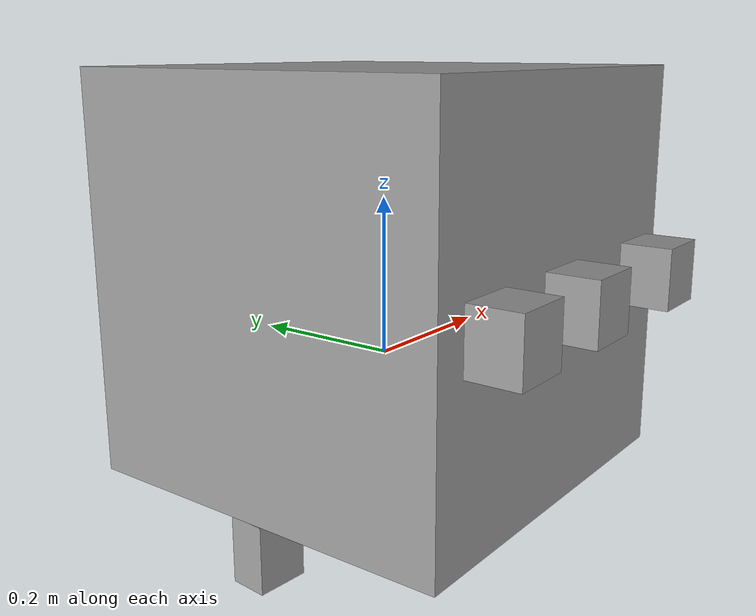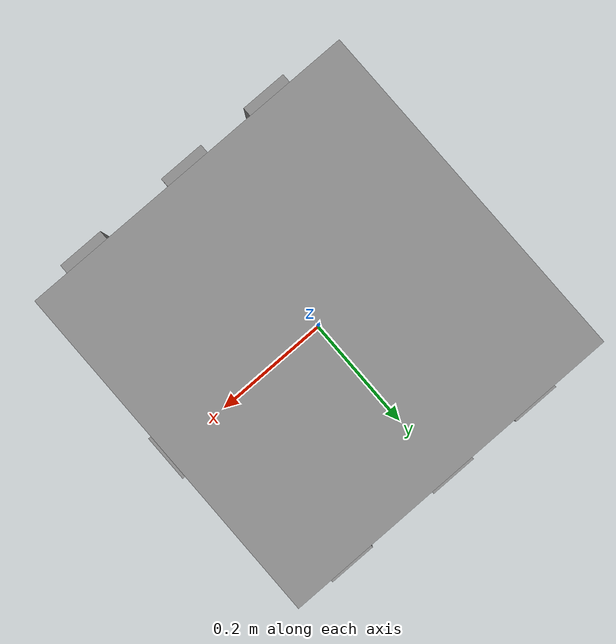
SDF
<sdf version="1.5">
 <world name="default">
  <include><uri>model://sun</uri></include>
  <model name="tiburon_bot_final">
   <include><uri>model://tiburon_bot_final</uri></include>
   <plugin name="tiburon_simulator" filename="libtiburon_simulator.so"/>
   <plugin name="imu" filename="libimu.so"/>
  </model>
 </world>
</sdf>

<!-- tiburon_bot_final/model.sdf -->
<sdf version='1.6'>
  <model name='tiburon_bot_final'>
    <link name='main_cube_body'>
      <pose frame=''>0.004745 0.002289 0.10857 0 -0 0</pose>
      <inertial>
        <mass>23</mass>
        <inertia>
          <ixx>0.166667</ixx>
          <ixy>0</ixy>
          <ixz>0</ixz>
          <iyy>0.166667</iyy>
          <iyz>0</iyz>
          <izz>0.166667</izz>
        </inertia>
        <pose frame=''>0 0 0 0 -0 0</pose>
      </inertial>
      <self_collide>0</self_collide>
      <kinematic>0</kinematic>
      <visual name='visual'>
        <pose frame=''>0 0 0 0 -0 0</pose>
        <geometry>
          <box>
            <size>0.5 0.5 0.5</size>
          </box>
        </geometry>
        <material>
          <lighting>1</lighting>
          <script>
            <uri>file://media/materials/scripts/gazebo.material</uri>
            <name>Gazebo/Grey</name>
          </script>
          <shader type='pixel'>
            <normal_map>__default__</normal_map>
          </shader>
          <ambient>0.3 0.3 0.3 1</ambient>
          <diffuse>0.7 0.7 0.7 1</diffuse>
          <specular>0.01 0.01 0.01 1</specular>
          <emissive>0 0 0 1</emissive>
        </material>
        <transparency>0</transparency>
        <cast_shadows>1</cast_shadows>
      </visual>
      <collision name='collision'>
        <laser_retro>0</laser_retro>
        <max_contacts>10</max_contacts>
        <pose frame=''>0 0 0 0 -0 0</pose>
        <geometry>
          <box>
            <size>0.5 0.5 0.5</size>
          </box>
        </geometry>
        <surface>
          <friction>
            <ode>
              <mu>1</mu>
              <mu2>1</mu2>
              <fdir1>0 0 0</fdir1>
              <slip1>0</slip1>
              <slip2>0</slip2>
            </ode>
            <torsional>
              <coefficient>1</coefficient>
              <patch_radius>0</patch_radius>
              <surface_radius>0</surface_radius>
              <use_patch_radius>1</use_patch_radius>
              <ode>
                <slip>0</slip>
              </ode>
            </torsional>
          </friction>
          <bounce>
            <restitution_coefficient>0</restitution_coefficient>
            <threshold>1e+06</threshold>
          </bounce>
          <contact>
            <collide_without_contact>0</collide_without_contact>
            <collide_without_contact_bitmask>1</collide_without_contact_bitmask>
            <collide_bitmask>1</collide_bitmask>
            <ode>
              <soft_cfm>0</soft_cfm>
              <soft_erp>0.2</soft_erp>
              <kp>1e+13</kp>
              <kd>1</kd>
              <max_vel>0.01</max_vel>
              <min_depth>0</min_depth>
            </ode>
            <bullet>
              <split_impulse>1</split_impulse>
              <split_impulse_penetration_threshold>-0.01</split_impulse_penetration_threshold>
              <soft_cfm>0</soft_cfm>
              <soft_erp>0.2</soft_erp>
              <kp>1e+13</kp>
              <kd>1</kd>
            </bullet>
          </contact>
        </surface>
      </collision>
    </link>
    <link name='camera_link'>
      <pose frame=''>-0.207029 0.014757 -0.187517 3.14159 4e-06 -1.64981</pose>
      <inertial>
        <mass>0.00026722</mass>
        <inertia>
          <ixx>2.5e-07</ixx>
          <ixy>0</ixy>
          <ixz>0</ixz>
          <iyy>2.1e-07</iyy>
          <iyz>0</iyz>
          <izz>1.5e-07</izz>
        </inertia>
        <pose frame=''>0 0 0 0 -0 0</pose>
      </inertial>
      <self_collide>0</self_collide>
      <kinematic>0</kinematic>
      <sensor name='camera1' type='camera'>
        <camera name='head'>
          <horizontal_fov>1.39626</horizontal_fov>
          <image>
            <width>800</width>
            <height>800</height>
            <format>R8G8B8</format>
          </image>
          <clip>
            <near>0.02</near>
            <far>300</far>
          </clip>
        </camera>
        <always_on>1</always_on>
        <update_rate>30</update_rate>
        <visualize>1</visualize>
        <plugin name='camera_controller' filename='libgazebo_ros_camera.so'>
          <alwaysOn>true</alwaysOn>
          <updateRate>0.0</updateRate>
          <cameraName>model/camera1</cameraName>
          <imageTopicName>image_raw</imageTopicName>
          <cameraInfoTopicName>camera_info</cameraInfoTopicName>
          <frameName>camera_link</frameName>
          <hackBaseline>0.07</hackBaseline>
          <distortionK1>0.0</distortionK1>
          <distortionK2>0.0</distortionK2>
          <distortionK3>0.0</distortionK3>
          <distortionT1>0.0</distortionT1>
          <distortionT2>0.0</distortionT2>
        </plugin>
      </sensor>
      <visual name='visual'>
        <pose frame=''>0 0 0 0 -0 0</pose>
        <geometry>
          <box>
            <size>0.048464 0.065326 0.084299</size>
          </box>
        </geometry>
        <material>
          <lighting>1</lighting>
          <script>
            <uri>file://media/materials/scripts/gazebo.material</uri>
            <name>Gazebo/Grey</name>
          </script>
          <shader type='pixel'>
            <normal_map>__default__</normal_map>
          </shader>
          <ambient>0.3 0.3 0.3 1</ambient>
          <diffuse>0.7 0.7 0.7 1</diffuse>
          <specular>0.01 0.01 0.01 1</specular>
          <emissive>0 0 0 1</emissive>
        </material>
        <transparency>0</transparency>
        <cast_shadows>1</cast_shadows>
      </visual>
      <collision name='collision'>
        <laser_retro>0</laser_retro>
        <max_contacts>10</max_contacts>
        <pose frame=''>0 0 0 0 -0 0</pose>
        <geometry>
          <box>
            <size>0.048464 0.065326 0.084299</size>
          </box>
        </geometry>
        <surface>
          <friction>
            <ode>
              <mu>1</mu>
              <mu2>1</mu2>
              <fdir1>0 0 0</fdir1>
              <slip1>0</slip1>
              <slip2>0</slip2>
            </ode>
            <torsional>
              <coefficient>1</coefficient>
              <patch_radius>0</patch_radius>
              <surface_radius>0</surface_radius>
              <use_patch_radius>1</use_patch_radius>
              <ode>
                <slip>0</slip>
              </ode>
            </torsional>
          </friction>
          <bounce>
            <restitution_coefficient>0</restitution_coefficient>
            <threshold>1e+06</threshold>
          </bounce>
          <contact>
            <collide_without_contact>0</collide_without_contact>
            <collide_without_contact_bitmask>1</collide_without_contact_bitmask>
            <collide_bitmask>1</collide_bitmask>
            <ode>
              <soft_cfm>0</soft_cfm>
              <soft_erp>0.2</soft_erp>
              <kp>1e+13</kp>
              <kd>1</kd>
              <max_vel>0.01</max_vel>
              <min_depth>0</min_depth>
            </ode>
            <bullet>
              <split_impulse>1</split_impulse>
              <split_impulse_penetration_threshold>-0.01</split_impulse_penetration_threshold>
              <soft_cfm>0</soft_cfm>
              <soft_erp>0.2</soft_erp>
              <kp>1e+13</kp>
              <kd>1</kd>
            </bullet>
          </contact>
        </surface>
      </collision>
    </link>
    <link name='thruster_1'>
      <pose frame=''>-0.161996 0.257619 0.10857 0 -0 0</pose>
      <inertial>
        <mass>0.585</mass>
        <inertia>
          <ixx>0.166667</ixx>
          <ixy>0</ixy>
          <ixz>0</ixz>
          <iyy>0.166667</iyy>
          <iyz>0</iyz>
          <izz>0.166667</izz>
        </inertia>
        <pose frame=''>0 0 0 0 -0 0</pose>
      </inertial>
      <self_collide>0</self_collide>
      <kinematic>0</kinematic>
      <gravity>1</gravity>
      <visual name='visual'>
        <pose frame=''>0 0 0 0 -0 0</pose>
        <geometry>
          <box>
            <size>0.077 0.077 0.077</size>
          </box>
        </geometry>
        <material>
          <lighting>1</lighting>
          <script>
            <uri>file://media/materials/scripts/gazebo.material</uri>
            <name>Gazebo/Grey</name>
          </script>
          <shader type='pixel'>
            <normal_map>__default__</normal_map>
          </shader>
          <ambient>1 1 1 1</ambient>
          <diffuse>1 1 1 1</diffuse>
          <specular>1 1 1 1</specular>
          <emissive>0 0 0 1</emissive>
        </material>
        <transparency>0</transparency>
        <cast_shadows>1</cast_shadows>
      </visual>
      <collision name='collision'>
        <laser_retro>0</laser_retro>
        <max_contacts>10</max_contacts>
        <pose frame=''>0 0 0 0 -0 0</pose>
        <geometry>
          <box>
            <size>0.077 0.077 0.077</size>
          </box>
        </geometry>
        <surface>
          <friction>
            <ode>
              <mu>1</mu>
              <mu2>1</mu2>
              <fdir1>0 0 0</fdir1>
              <slip1>0</slip1>
              <slip2>0</slip2>
            </ode>
            <torsional>
              <coefficient>1</coefficient>
              <patch_radius>0</patch_radius>
              <surface_radius>0</surface_radius>
              <use_patch_radius>1</use_patch_radius>
              <ode>
                <slip>0</slip>
              </ode>
            </torsional>
          </friction>
          <bounce>
            <restitution_coefficient>0</restitution_coefficient>
            <threshold>1e+06</threshold>
          </bounce>
          <contact>
            <collide_without_contact>0</collide_without_contact>
            <collide_without_contact_bitmask>1</collide_without_contact_bitmask>
            <collide_bitmask>1</collide_bitmask>
            <ode>
              <soft_cfm>0</soft_cfm>
              <soft_erp>0.2</soft_erp>
              <kp>1e+13</kp>
              <kd>1</kd>
              <max_vel>0.01</max_vel>
              <min_depth>0</min_depth>
            </ode>
            <bullet>
              <split_impulse>1</split_impulse>
              <split_impulse_penetration_threshold>-0.01</split_impulse_penetration_threshold>
              <soft_cfm>0</soft_cfm>
              <soft_erp>0.2</soft_erp>
              <kp>1e+13</kp>
              <kd>1</kd>
            </bullet>
          </contact>
        </surface>
      </collision>
    </link>
    <link name='thruster_2'>
      <pose frame=''>-0.161996 -0.27381 0.10857 0 -0 0</pose>
      <inertial>
        <mass>0.5</mass>
        <inertia>
          <ixx>0.166667</ixx>
          <ixy>0</ixy>
          <ixz>0</ixz>
          <iyy>0.166667</iyy>
          <iyz>0</iyz>
          <izz>0.166667</izz>
        </inertia>
        <pose frame=''>0 0 0 0 -0 0</pose>
      </inertial>
      <self_collide>0</self_collide>
      <kinematic>0</kinematic>
      <gravity>1</gravity>
      <visual name='visual'>
        <pose frame=''>0 0 0 0 -0 0</pose>
        <geometry>
          <box>
            <size>0.077 0.077 0.077</size>
          </box>
        </geometry>
        <material>
          <lighting>1</lighting>
          <script>
            <uri>file://media/materials/scripts/gazebo.material</uri>
            <name>Gazebo/Grey</name>
          </script>
          <shader type='pixel'>
            <normal_map>__default__</normal_map>
          </shader>
          <ambient>1 1 1 1</ambient>
          <diffuse>1 1 1 1</diffuse>
          <specular>1 1 1 1</specular>
          <emissive>0 0 0 1</emissive>
        </material>
        <transparency>0</transparency>
        <cast_shadows>1</cast_shadows>
      </visual>
      <collision name='collision'>
        <laser_retro>0</laser_retro>
        <max_contacts>10</max_contacts>
        <pose frame=''>0 0 0 0 -0 0</pose>
        <geometry>
          <box>
            <size>0.077 0.077 0.077</size>
          </box>
        </geometry>
        <surface>
          <friction>
            <ode>
              <mu>1</mu>
              <mu2>1</mu2>
              <fdir1>0 0 0</fdir1>
              <slip1>0</slip1>
              <slip2>0</slip2>
            </ode>
            <torsional>
              <coefficient>1</coefficient>
              <patch_radius>0</patch_radius>
              <surface_radius>0</surface_radius>
              <use_patch_radius>1</use_patch_radius>
              <ode>
                <slip>0</slip>
              </ode>
            </torsional>
          </friction>
          <bounce>
            <restitution_coefficient>0</restitution_coefficient>
            <threshold>1e+06</threshold>
          </bounce>
          <contact>
            <collide_without_contact>0</collide_without_contact>
            <collide_without_contact_bitmask>1</collide_without_contact_bitmask>
            <collide_bitmask>1</collide_bitmask>
            <ode>
              <soft_cfm>0</soft_cfm>
              <soft_erp>0.2</soft_erp>
              <kp>1e+13</kp>
              <kd>1</kd>
              <max_vel>0.01</max_vel>
              <min_depth>0</min_depth>
            </ode>
            <bullet>
              <split_impulse>1</split_impulse>
              <split_impulse_penetration_threshold>-0.01</split_impulse_penetration_threshold>
              <soft_cfm>0</soft_cfm>
              <soft_erp>0.2</soft_erp>
              <kp>1e+13</kp>
              <kd>1</kd>
            </bullet>
          </contact>
        </surface>
      </collision>
    </link>
    <link name='thruster_3'>
      <pose frame=''>0.259 0.002289 0.10857 0 -0 0</pose>
      <inertial>
        <mass>0.2</mass>
        <inertia>
          <ixx>0.166667</ixx>
          <ixy>0</ixy>
          <ixz>0</ixz>
          <iyy>0.166667</iyy>
          <iyz>0</iyz>
          <izz>0.166667</izz>
        </inertia>
        <pose frame=''>0 0 0 0 -0 0</pose>
      </inertial>
      <self_collide>0</self_collide>
      <kinematic>0</kinematic>
      <gravity>1</gravity>
      <visual name='visual'>
        <pose frame=''>0 0 0 0 -0 0</pose>
        <geometry>
          <box>
            <size>0.077 0.077 0.077</size>
          </box>
        </geometry>
        <material>
          <lighting>1</lighting>
          <script>
            <uri>file://media/materials/scripts/gazebo.material</uri>
            <name>Gazebo/Grey</name>
          </script>
          <shader type='pixel'>
            <normal_map>__default__</normal_map>
          </shader>
          <ambient>1 1 1 1</ambient>
          <diffuse>1 1 1 1</diffuse>
          <specular>1 1 1 1</specular>
          <emissive>0 0 0 1</emissive>
        </material>
        <transparency>0</transparency>
        <cast_shadows>1</cast_shadows>
      </visual>
      <collision name='collision'>
        <laser_retro>0</laser_retro>
        <max_contacts>10</max_contacts>
        <pose frame=''>0 0 0 0 -0 0</pose>
        <geometry>
          <box>
            <size>0.077 0.077 0.077</size>
          </box>
        </geometry>
        <surface>
          <friction>
            <ode>
              <mu>1</mu>
              <mu2>1</mu2>
              <fdir1>0 0 0</fdir1>
              <slip1>0</slip1>
              <slip2>0</slip2>
            </ode>
            <torsional>
              <coefficient>1</coefficient>
              <patch_radius>0</patch_radius>
              <surface_radius>0</surface_radius>
              <use_patch_radius>1</use_patch_radius>
              <ode>
                <slip>0</slip>
              </ode>
            </torsional>
          </friction>
          <bounce>
            <restitution_coefficient>0</restitution_coefficient>
            <threshold>1e+06</threshold>
          </bounce>
          <contact>
            <collide_without_contact>0</collide_without_contact>
            <collide_without_contact_bitmask>1</collide_without_contact_bitmask>
            <collide_bitmask>1</collide_bitmask>
            <ode>
              <soft_cfm>0</soft_cfm>
              <soft_erp>0.2</soft_erp>
              <kp>1e+13</kp>
              <kd>1</kd>
              <max_vel>0.01</max_vel>
              <min_depth>0</min_depth>
            </ode>
            <bullet>
              <split_impulse>1</split_impulse>
              <split_impulse_penetration_threshold>-0.01</split_impulse_penetration_threshold>
              <soft_cfm>0</soft_cfm>
              <soft_erp>0.2</soft_erp>
              <kp>1e+13</kp>
              <kd>1</kd>
            </bullet>
          </contact>
        </surface>
      </collision>
    </link>
    <link name='thruster_4'>
      <pose frame=''>0.192004 0.257619 0.10857 0 -0 0</pose>
      <inertial>
        <mass>0.39</mass>
        <inertia>
          <ixx>0.166667</ixx>
          <ixy>0</ixy>
          <ixz>0</ixz>
          <iyy>0.166667</iyy>
          <iyz>0</iyz>
          <izz>0.166667</izz>
        </inertia>
        <pose frame=''>0 0 0 0 -0 0</pose>
      </inertial>
      <self_collide>0</self_collide>
      <kinematic>0</kinematic>
      <gravity>1</gravity>
      <visual name='visual'>
        <pose frame=''>0 0 0 0 -0 0</pose>
        <geometry>
          <box>
            <size>0.077 0.077 0.077</size>
          </box>
        </geometry>
        <material>
          <lighting>1</lighting>
          <script>
            <uri>file://media/materials/scripts/gazebo.material</uri>
            <name>Gazebo/Grey</name>
          </script>
          <shader type='pixel'>
            <normal_map>__default__</normal_map>
          </shader>
          <ambient>1 1 1 1</ambient>
          <diffuse>1 1 1 1</diffuse>
          <specular>1 1 1 1</specular>
          <emissive>0 0 0 1</emissive>
        </material>
        <transparency>0</transparency>
        <cast_shadows>1</cast_shadows>
      </visual>
      <collision name='collision'>
        <laser_retro>0</laser_retro>
        <max_contacts>10</max_contacts>
        <pose frame=''>0 0 0 0 -0 0</pose>
        <geometry>
          <box>
            <size>0.077 0.077 0.077</size>
          </box>
        </geometry>
        <surface>
          <friction>
            <ode>
              <mu>1</mu>
              <mu2>1</mu2>
              <fdir1>0 0 0</fdir1>
              <slip1>0</slip1>
              <slip2>0</slip2>
            </ode>
            <torsional>
              <coefficient>1</coefficient>
              <patch_radius>0</patch_radius>
              <surface_radius>0</surface_radius>
              <use_patch_radius>1</use_patch_radius>
              <ode>
                <slip>0</slip>
              </ode>
            </torsional>
          </friction>
          <bounce>
            <restitution_coefficient>0</restitution_coefficient>
            <threshold>1e+06</threshold>
          </bounce>
          <contact>
            <collide_without_contact>0</collide_without_contact>
            <collide_without_contact_bitmask>1</collide_without_contact_bitmask>
            <collide_bitmask>1</collide_bitmask>
            <ode>
              <soft_cfm>0</soft_cfm>
              <soft_erp>0.2</soft_erp>
              <kp>1e+13</kp>
              <kd>1</kd>
              <max_vel>0.01</max_vel>
              <min_depth>0</min_depth>
            </ode>
            <bullet>
              <split_impulse>1</split_impulse>
              <split_impulse_penetration_threshold>-0.01</split_impulse_penetration_threshold>
              <soft_cfm>0</soft_cfm>
              <soft_erp>0.2</soft_erp>
              <kp>1e+13</kp>
              <kd>1</kd>
            </bullet>
          </contact>
        </surface>
      </collision>
    </link>
    <link name='thruster_5'>
      <pose frame=''>0.192004 -0.27381 0.10857 0 -0 0</pose>
      <inertial>
        <mass>0.39</mass>
        <inertia>
          <ixx>0.166667</ixx>
          <ixy>0</ixy>
          <ixz>0</ixz>
          <iyy>0.166667</iyy>
          <iyz>0</iyz>
          <izz>0.166667</izz>
        </inertia>
        <pose frame=''>0 0 0 0 -0 0</pose>
      </inertial>
      <self_collide>0</self_collide>
      <kinematic>0</kinematic>
      <gravity>1</gravity>
      <visual name='visual'>
        <pose frame=''>0 0 0 0 -0 0</pose>
        <geometry>
          <box>
            <size>0.077 0.077 0.077</size>
          </box>
        </geometry>
        <material>
          <lighting>1</lighting>
          <script>
            <uri>file://media/materials/scripts/gazebo.material</uri>
            <name>Gazebo/Grey</name>
          </script>
          <shader type='pixel'>
            <normal_map>__default__</normal_map>
          </shader>
          <ambient>1 1 1 1</ambient>
          <diffuse>1 1 1 1</diffuse>
          <specular>1 1 1 1</specular>
          <emissive>0 0 0 1</emissive>
        </material>
        <transparency>0</transparency>
        <cast_shadows>1</cast_shadows>
      </visual>
      <collision name='collision'>
        <laser_retro>0</laser_retro>
        <max_contacts>10</max_contacts>
        <pose frame=''>0 0 0 0 -0 0</pose>
        <geometry>
          <box>
            <size>0.077 0.077 0.077</size>
          </box>
        </geometry>
        <surface>
          <friction>
            <ode>
              <mu>1</mu>
              <mu2>1</mu2>
              <fdir1>0 0 0</fdir1>
              <slip1>0</slip1>
              <slip2>0</slip2>
            </ode>
            <torsional>
              <coefficient>1</coefficient>
              <patch_radius>0</patch_radius>
              <surface_radius>0</surface_radius>
              <use_patch_radius>1</use_patch_radius>
              <ode>
                <slip>0</slip>
              </ode>
            </torsional>
          </friction>
          <bounce>
            <restitution_coefficient>0</restitution_coefficient>
            <threshold>1e+06</threshold>
          </bounce>
          <contact>
            <collide_without_contact>0</collide_without_contact>
            <collide_without_contact_bitmask>1</collide_without_contact_bitmask>
            <collide_bitmask>1</collide_bitmask>
            <ode>
              <soft_cfm>0</soft_cfm>
              <soft_erp>0.2</soft_erp>
              <kp>1e+13</kp>
              <kd>1</kd>
              <max_vel>0.01</max_vel>
              <min_depth>0</min_depth>
            </ode>
            <bullet>
              <split_impulse>1</split_impulse>
              <split_impulse_penetration_threshold>-0.01</split_impulse_penetration_threshold>
              <soft_cfm>0</soft_cfm>
              <soft_erp>0.2</soft_erp>
              <kp>1e+13</kp>
              <kd>1</kd>
            </bullet>
          </contact>
        </surface>
      </collision>
    </link>
    <link name='thruster_6'>
      <pose frame=''>0.004745 0.002289 -0.1413 0 -0 0</pose>
      <inertial>
        <mass>0.39</mass>
        <inertia>
          <ixx>0.166667</ixx>
          <ixy>0</ixy>
          <ixz>0</ixz>
          <iyy>0.166667</iyy>
          <iyz>0</iyz>
          <izz>0.166667</izz>
        </inertia>
        <pose frame=''>0 0 0 0 -0 0</pose>
      </inertial>
      <self_collide>0</self_collide>
      <kinematic>0</kinematic>
      <visual name='visual'>
        <pose frame=''>0 0 0 0 -0 0</pose>
        <geometry>
          <box>
            <size>0.077 0.077 0.077</size>
          </box>
        </geometry>
        <material>
          <lighting>1</lighting>
          <script>
            <uri>file://media/materials/scripts/gazebo.material</uri>
            <name>Gazebo/Grey</name>
          </script>
          <shader type='pixel'>
            <normal_map>__default__</normal_map>
          </shader>
          <ambient>1 1 1 1</ambient>
          <diffuse>1 1 1 1</diffuse>
          <specular>1 1 1 1</specular>
          <emissive>0 0 0 1</emissive>
        </material>
        <transparency>0</transparency>
        <cast_shadows>1</cast_shadows>
      </visual>
      <collision name='collision'>
        <laser_retro>0</laser_retro>
        <max_contacts>10</max_contacts>
        <pose frame=''>0 0 0 0 -0 0</pose>
        <geometry>
          <box>
            <size>0.077 0.077 0.077</size>
          </box>
        </geometry>
        <surface>
          <friction>
            <ode>
              <mu>1</mu>
              <mu2>1</mu2>
              <fdir1>0 0 0</fdir1>
              <slip1>0</slip1>
              <slip2>0</slip2>
            </ode>
            <torsional>
              <coefficient>1</coefficient>
              <patch_radius>0</patch_radius>
              <surface_radius>0</surface_radius>
              <use_patch_radius>1</use_patch_radius>
              <ode>
                <slip>0</slip>
              </ode>
            </torsional>
          </friction>
          <bounce>
            <restitution_coefficient>0</restitution_coefficient>
            <threshold>1e+06</threshold>
          </bounce>
          <contact>
            <collide_without_contact>0</collide_without_contact>
            <collide_without_contact_bitmask>1</collide_without_contact_bitmask>
            <collide_bitmask>1</collide_bitmask>
            <ode>
              <soft_cfm>0</soft_cfm>
              <soft_erp>0.2</soft_erp>
              <kp>1e+13</kp>
              <kd>1</kd>
              <max_vel>0.01</max_vel>
              <min_depth>0</min_depth>
            </ode>
            <bullet>
              <split_impulse>1</split_impulse>
              <split_impulse_penetration_threshold>-0.01</split_impulse_penetration_threshold>
              <soft_cfm>0</soft_cfm>
              <soft_erp>0.2</soft_erp>
              <kp>1e+13</kp>
              <kd>1</kd>
            </bullet>
          </contact>
        </surface>
      </collision>
    </link>
    <link name='thruster_7'>
      <pose frame=''>-0.002381 0.257619 0.10857 0 -0 0</pose>
      <inertial>
        <mass>0.39</mass>
        <inertia>
          <ixx>0.166667</ixx>
          <ixy>0</ixy>
          <ixz>0</ixz>
          <iyy>0.166667</iyy>
          <iyz>0</iyz>
          <izz>0.166667</izz>
        </inertia>
        <pose frame=''>0 0 0 0 -0 0</pose>
      </inertial>
      <self_collide>0</self_collide>
      <kinematic>0</kinematic>
      <gravity>1</gravity>
      <visual name='visual'>
        <pose frame=''>0 0 0 0 -0 0</pose>
        <geometry>
          <box>
            <size>0.077 0.077 0.077</size>
          </box>
        </geometry>
        <material>
          <lighting>1</lighting>
          <script>
            <uri>file://media/materials/scripts/gazebo.material</uri>
            <name>Gazebo/Grey</name>
          </script>
          <shader type='pixel'>
            <normal_map>__default__</normal_map>
          </shader>
          <ambient>1 1 1 1</ambient>
          <diffuse>1 1 1 1</diffuse>
          <specular>1 1 1 1</specular>
          <emissive>0 0 0 1</emissive>
        </material>
        <transparency>0</transparency>
        <cast_shadows>1</cast_shadows>
      </visual>
      <collision name='collision'>
        <laser_retro>0</laser_retro>
        <max_contacts>10</max_contacts>
        <pose frame=''>0 0 0 0 -0 0</pose>
        <geometry>
          <box>
            <size>0.077 0.077 0.077</size>
          </box>
        </geometry>
        <surface>
          <friction>
            <ode>
              <mu>1</mu>
              <mu2>1</mu2>
              <fdir1>0 0 0</fdir1>
              <slip1>0</slip1>
              <slip2>0</slip2>
            </ode>
            <torsional>
              <coefficient>1</coefficient>
              <patch_radius>0</patch_radius>
              <surface_radius>0</surface_radius>
              <use_patch_radius>1</use_patch_radius>
              <ode>
                <slip>0</slip>
              </ode>
            </torsional>
          </friction>
          <bounce>
            <restitution_coefficient>0</restitution_coefficient>
            <threshold>1e+06</threshold>
          </bounce>
          <contact>
            <collide_without_contact>0</collide_without_contact>
            <collide_without_contact_bitmask>1</collide_without_contact_bitmask>
            <collide_bitmask>1</collide_bitmask>
            <ode>
              <soft_cfm>0</soft_cfm>
              <soft_erp>0.2</soft_erp>
              <kp>1e+13</kp>
              <kd>1</kd>
              <max_vel>0.01</max_vel>
              <min_depth>0</min_depth>
            </ode>
            <bullet>
              <split_impulse>1</split_impulse>
              <split_impulse_penetration_threshold>-0.01</split_impulse_penetration_threshold>
              <soft_cfm>0</soft_cfm>
              <soft_erp>0.2</soft_erp>
              <kp>1e+13</kp>
              <kd>1</kd>
            </bullet>
          </contact>
        </surface>
      </collision>
    </link>
    <link name='thruster_8'>
      <pose frame=''>-0.002381 -0.27381 0.10857 0 -0 0</pose>
      <inertial>
        <mass>0.39</mass>
        <inertia>
          <ixx>0.166667</ixx>
          <ixy>0</ixy>
          <ixz>0</ixz>
          <iyy>0.166667</iyy>
          <iyz>0</iyz>
          <izz>0.166667</izz>
        </inertia>
        <pose frame=''>0 0 0 0 -0 0</pose>
      </inertial>
      <self_collide>0</self_collide>
      <kinematic>0</kinematic>
      <gravity>1</gravity>
      <visual name='visual'>
        <pose frame=''>0 0 0 0 -0 0</pose>
        <geometry>
          <box>
            <size>0.077 0.077 0.077</size>
          </box>
        </geometry>
        <material>
          <lighting>1</lighting>
          <script>
            <uri>file://media/materials/scripts/gazebo.material</uri>
            <name>Gazebo/Grey</name>
          </script>
          <shader type='pixel'>
            <normal_map>__default__</normal_map>
          </shader>
          <ambient>1 1 1 1</ambient>
          <diffuse>1 1 1 1</diffuse>
          <specular>1 1 1 1</specular>
          <emissive>0 0 0 1</emissive>
        </material>
        <transparency>0</transparency>
        <cast_shadows>1</cast_shadows>
      </visual>
      <collision name='collision'>
        <laser_retro>0</laser_retro>
        <max_contacts>10</max_contacts>
        <pose frame=''>0 0 0 0 -0 0</pose>
        <geometry>
          <box>
            <size>0.077 0.077 0.077</size>
          </box>
        </geometry>
        <surface>
          <friction>
            <ode>
              <mu>1</mu>
              <mu2>1</mu2>
              <fdir1>0 0 0</fdir1>
              <slip1>0</slip1>
              <slip2>0</slip2>
            </ode>
            <torsional>
              <coefficient>1</coefficient>
              <patch_radius>0</patch_radius>
              <surface_radius>0</surface_radius>
              <use_patch_radius>1</use_patch_radius>
              <ode>
                <slip>0</slip>
              </ode>
            </torsional>
          </friction>
          <bounce>
            <restitution_coefficient>0</restitution_coefficient>
            <threshold>1e+06</threshold>
          </bounce>
          <contact>
            <collide_without_contact>0</collide_without_contact>
            <collide_without_contact_bitmask>1</collide_without_contact_bitmask>
            <collide_bitmask>1</collide_bitmask>
            <ode>
              <soft_cfm>0</soft_cfm>
              <soft_erp>0.2</soft_erp>
              <kp>1e+13</kp>
              <kd>1</kd>
              <max_vel>0.01</max_vel>
              <min_depth>0</min_depth>
            </ode>
            <bullet>
              <split_impulse>1</split_impulse>
              <split_impulse_penetration_threshold>-0.01</split_impulse_penetration_threshold>
              <soft_cfm>0</soft_cfm>
              <soft_erp>0.2</soft_erp>
              <kp>1e+13</kp>
              <kd>1</kd>
            </bullet>
          </contact>
        </surface>
      </collision>
    </link>
    <joint name='main_cube_body_JOINT_0_0' type='fixed'>
      <parent>main_cube_body</parent>
      <child>camera_link</child>
      <pose frame=''>0 0 0 0 -0 0</pose>
      <physics>
        <ode>
          <limit>
            <cfm>0</cfm>
            <erp>0.2</erp>
          </limit>
          <suspension>
            <cfm>0</cfm>
            <erp>0.2</erp>
          </suspension>
        </ode>
      </physics>
    </joint>
    <joint name='main_cube_body_JOINT_0' type='fixed'>
      <parent>main_cube_body</parent>
      <child>thruster_5</child>
      <pose frame=''>0 0 0 0 -0 0</pose>
      <physics>
        <ode>
          <limit>
            <cfm>0</cfm>
            <erp>0.2</erp>
          </limit>
          <suspension>
            <cfm>0</cfm>
            <erp>0.2</erp>
          </suspension>
        </ode>
      </physics>
    </joint>
    <joint name='main_cube_body_JOINT_1' type='fixed'>
      <parent>main_cube_body</parent>
      <child>thruster_8</child>
      <pose frame=''>0 0 0 0 -0 0</pose>
      <physics>
        <ode>
          <limit>
            <cfm>0</cfm>
            <erp>0.2</erp>
          </limit>
          <suspension>
            <cfm>0</cfm>
            <erp>0.2</erp>
          </suspension>
        </ode>
      </physics>
    </joint>
    <joint name='main_cube_body_JOINT_2' type='revolute'>
      <parent>main_cube_body</parent>
      <child>thruster_2</child>
      <pose frame=''>0 0 0 0 -0 0</pose>
      <axis>
        <xyz>1 0 0</xyz>
        <use_parent_model_frame>0</use_parent_model_frame>
        <limit>
          <lower>-1.79769e+308</lower>
          <upper>1.79769e+308</upper>
          <effort>-1</effort>
          <velocity>-1</velocity>
        </limit>
        <dynamics>
          <spring_reference>0</spring_reference>
          <spring_stiffness>0</spring_stiffness>
          <damping>0</damping>
          <friction>0</friction>
        </dynamics>
      </axis>
      <physics>
        <ode>
          <limit>
            <cfm>0</cfm>
            <erp>0.2</erp>
          </limit>
          <suspension>
            <cfm>0</cfm>
            <erp>0.2</erp>
          </suspension>
        </ode>
      </physics>
    </joint>
    <joint name='main_cube_body_JOINT_3' type='fixed'>
      <parent>main_cube_body</parent>
      <child>thruster_1</child>
      <pose frame=''>0 0 0 0 -0 0</pose>
      <physics>
        <ode>
          <limit>
            <cfm>0</cfm>
            <erp>0.2</erp>
          </limit>
          <suspension>
            <cfm>0</cfm>
            <erp>0.2</erp>
          </suspension>
        </ode>
      </physics>
    </joint>
    <joint name='main_cube_body_JOINT_6' type='fixed'>
      <parent>main_cube_body</parent>
      <child>thruster_3</child>
      <pose frame=''>0 0 0 0 -0 0</pose>
      <physics>
        <ode>
          <limit>
            <cfm>0</cfm>
            <erp>0.2</erp>
          </limit>
          <suspension>
            <cfm>0</cfm>
            <erp>0.2</erp>
          </suspension>
        </ode>
      </physics>
    </joint>
    <joint name='main_cube_body_JOINT_7' type='fixed'>
      <parent>main_cube_body</parent>
      <child>thruster_4</child>
      <pose frame=''>0 0 0 0 -0 0</pose>
      <physics>
        <ode>
          <limit>
            <cfm>0</cfm>
            <erp>0.2</erp>
          </limit>
          <suspension>
            <cfm>0</cfm>
            <erp>0.2</erp>
          </suspension>
        </ode>
      </physics>
    </joint>
    <joint name='main_cube_body_JOINT_8' type='fixed'>
      <parent>main_cube_body</parent>
      <child>thruster_6</child>
      <pose frame=''>0 0 0 0 -0 0</pose>
      <physics>
        <ode>
          <limit>
            <cfm>0</cfm>
            <erp>0.2</erp>
          </limit>
          <suspension>
            <cfm>0</cfm>
            <erp>0.2</erp>
          </suspension>
        </ode>
      </physics>
    </joint>
    <joint name='main_cube_body_JOINT_9' type='fixed'>
      <parent>main_cube_body</parent>
      <child>thruster_7</child>
      <pose frame=''>0 0 0 0 -0 0</pose>
      <physics>
        <ode>
          <limit>
            <cfm>0</cfm>
            <erp>0.2</erp>
          </limit>
          <suspension>
            <cfm>0</cfm>
            <erp>0.2</erp>
          </suspension>
        </ode>
      </physics>
    </joint>
    <static>0</static>
    <allow_auto_disable>1</allow_auto_disable>
    <plugin name='tiburon_simulator' filename='libtiburon_simulator.so'>
      <descriptionParam>robot_description</descriptionParam>
      <fluidTopic>current</fluidTopic>
      <alwaysOn>true</alwaysOn>
      <surface>0 0 0</surface>
      <updateRate>.001</updateRate>
      <link name='main_cube_body'>
        <buoyancy>
          <compensation>0.7</compensation>
          <origin xyz='0 0 0'/>
        </buoyancy>
      </link>
    </plugin>
<plugin name='thruster_plugin' filename='libthruster_plugin.so'></plugin>
  </model>
</sdf>
